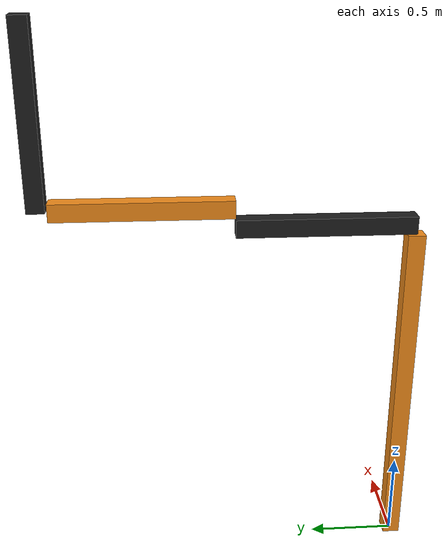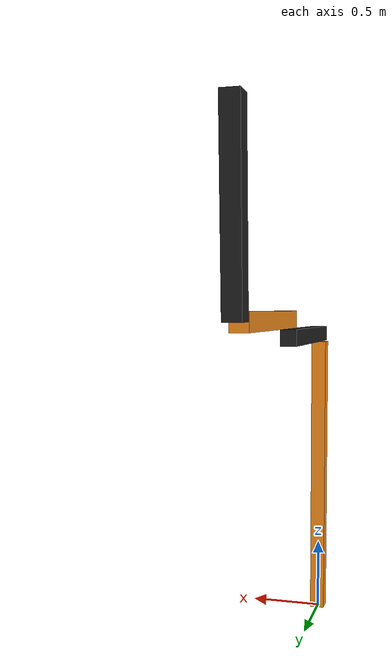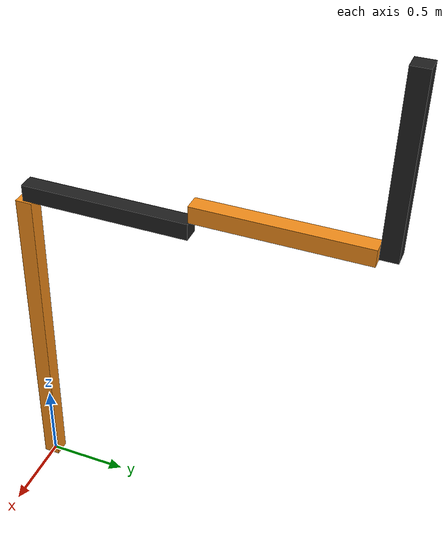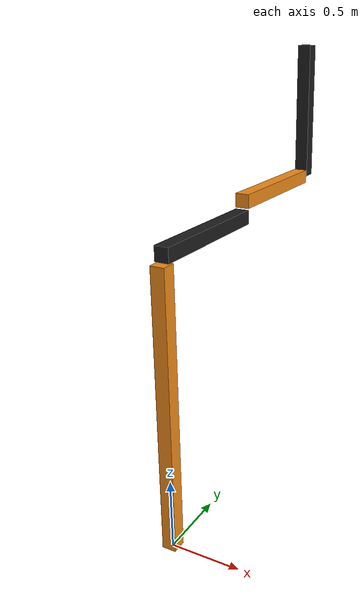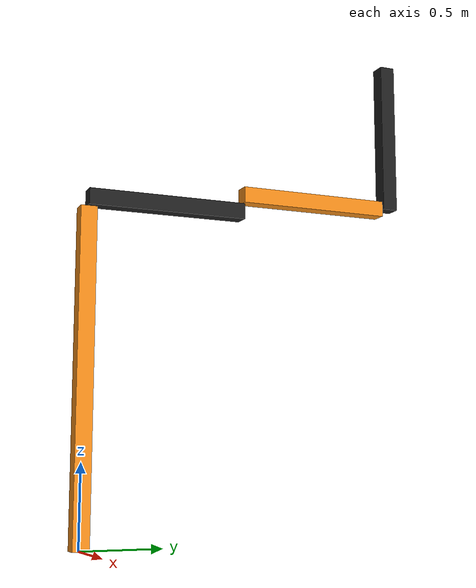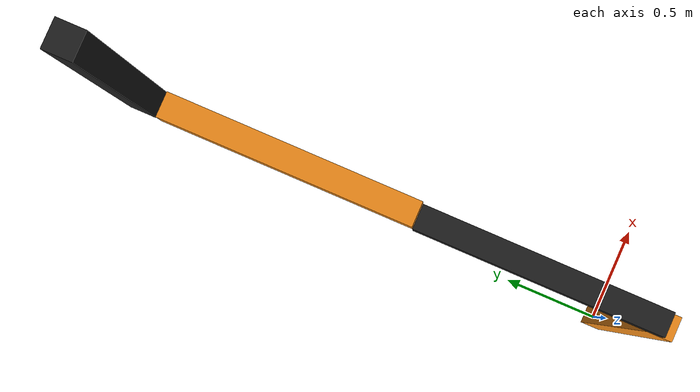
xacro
<?xml version="1.0"?>
<!-- RBE 500 Group Assignment Robot Arm -->
<robot name="arm" xmlns:xacro="http://www.ros.org/wiki/xacro">

  <!-- Constants for robot dimensions. NOTE: Mass and intertia are NOT correct currently, but don't matter for this assignment. -->
  <xacro:property name="PI" value="3.14159"/>
  <xacro:property name="mass" value="1" /> <!-- arbitrary value for mass. not accurate currently -->
  <xacro:property name="width" value="0.1" /> <!-- Square dimensions (widthxwidth) of links -->
  <xacro:property name="length1" value="2" /> <!-- Link 1 -->
  <xacro:property name="length2" value="1" /> <!-- Link 2 -->
  <xacro:property name="length3" value="1" /> <!-- Link 3 -->
  <xacro:property name="length4" value="1" /> <!-- Link 4 -->
  <xacro:property name="joint_offset" value="0.01" /> <!-- Space gap from link and joint -->

  <!-- Import all Gazebo-customization elements, including Gazebo colors -->
  <xacro:include filename="$(find part1_gazebo)/urdf/arm.gazebo" />
  <!-- Import Rviz colors -->
  <xacro:include filename="$(find part1_gazebo)/urdf/materials.xacro" />

  <!-- Used for fixing robot to Gazebo 'base_link' -->
  <link name="world"/>

  <joint name="fixed" type="fixed">
    <parent link="world"/>
    <child link="link1"/>
  </joint>

  <!-- Base Link -->
  <link name="link1">
    <collision>
      <origin xyz="0 0 ${length1/2}" rpy="0 0 0"/>
      <geometry>
	<box size="${width} ${width} ${length1}"/>
      </geometry>
    </collision>

    <visual>
      <origin xyz="0 0 ${length1/2}" rpy="0 0 0"/>
      <geometry>
	<box size="${width} ${width} ${length1}"/>
      </geometry>
      <material name="orange"/>
    </visual>

    <inertial>
      <origin xyz="0 0 ${length1/2}" rpy="0 0 0"/>
      <mass value="${mass}"/>
      <inertia
	  ixx="${mass / 12.0 * (width*width + length1*length1)}" ixy="0.0" ixz="0.0"
	  iyy="${mass / 12.0 * (length1*length1 + width*width)}" iyz="0.0"
	  izz="${mass / 12.0 * (width*width + width*width)}"/>
    </inertial>
  </link>

  <joint name="joint1" type="revolute">
    <parent link="link1"/>
    <child link="link2"/>
    <origin xyz="0 0 ${length1 + joint_offset + width/2}" rpy="0 0 0"/>
    <limit effort="1000.0" lower="0.0" upper="0.548" velocity="0.5"/>
    <dynamics damping="0.7"/>
    <axis xyz="0 0 1"/>
  </joint>

  <!-- Middle Link -->
  <link name="link2">
    <collision>
	<origin xyz="0 ${length2/2} 0" rpy="0 0 0"/>
      <geometry>
	<box size="${width} ${length2} ${width}"/>
      </geometry>
    </collision>

    <visual>
      <origin xyz="0 ${length2/2} 0" rpy="0 0 0"/>
      <geometry>
	<box size="${width} ${length2} ${width}"/>
      </geometry>
      <material name="black"/>
    </visual>

    <inertial>
      <origin xyz="0 ${length2/2} 0" rpy="0 0 0"/>
      <mass value="${mass}"/>
      <inertia
	  ixx="${mass / 12.0 * (width*width + length2*length2)}" ixy="0.0" ixz="0.0"
	  iyy="${mass / 12.0 * (length2*length2 + width*width)}" iyz="0.0"
	  izz="${mass / 12.0 * (width*width + width*width)}"/>
    </inertial>
  </link>

  <joint name="joint2" type="revolute">
    <parent link="link2"/>
    <child link="link3"/>
    <origin xyz="0 ${length2} ${joint_offset + width}" rpy="0 0 0"/>
    <axis xyz="0 0 1"/>
    <limit effort="1000.0" lower="0.0" upper="0.548" velocity="0.5"/>
    <dynamics damping="0.7"/>
  </joint>

  <!-- Top Link -->
  <link name="link3">
    <collision>
      <origin xyz="0 ${length3/2} 0" rpy="0 0 0"/>
      <geometry>
	<box size="${width} ${length3} ${width}"/>
      </geometry>
    </collision>

    <visual>
      <origin xyz="0 ${length3/2} 0" rpy="0 0 0"/>
      <geometry>
	<box size="${width} ${length3} ${width}"/>
      </geometry>
      <material name="orange"/>
    </visual>

    <inertial>
      <origin xyz="0 ${length3/2} 0" rpy="0 0 0"/>
      <mass value="${mass}"/>
      <inertia
	  ixx="${mass / 12.0 * (width*width + length3*length3)}" ixy="0.0" ixz="0.0"
	  iyy="${mass / 12.0 * (length3*length3 + width*width)}" iyz="0.0"
	  izz="${mass / 12.0 * (width*width + width*width)}"/>
    </inertial>
  </link>

  <joint name="joint3" type="prismatic">
    <parent link="link3"/>
    <child link="link4"/>
    <origin xyz="0 ${length3 + width/2 + joint_offset} 0" rpy="0 0 0"/>
    <axis xyz="0 0 1"/>
    <limit effort="1000.0" lower="-1.0" upper="0.0" velocity="1.0"/>
    <dynamics damping="0.7"/>
  </joint>

  <link name="link4">
    <collision>
      <origin xyz="0 0 ${length4/2}" rpy="0 0 0"/>
      <geometry>
	<box size="${width} ${width} ${length4}"/>
      </geometry>
    </collision>

    <visual>
      <origin xyz="0 0 ${length4/2}" rpy="0 0 0"/>
      <geometry>
	<box size="${width} ${width} ${length4}"/>
      </geometry>
      <material name="black"/>
    </visual>

    <inertial>
      <origin xyz="0 0 ${length4/2}" rpy="0 0 0"/>
      <mass value="${mass}"/>
      <inertia
	  ixx="${mass / 12.0 * (width*width + length4*length4)}" ixy="0.0" ixz="0.0"
	  iyy="${mass / 12.0 * (length4*length4 + width*width)}" iyz="0.0"
	  izz="${mass / 12.0 * (width*width + width*width)}"/>
    </inertial>
  </link>

  <transmission name="tran1">
    <type>transmission_interface/SimpleTransmission</type>
    <joint name="joint1">
      <hardwareInterface>EffortJointInterface</hardwareInterface>
    </joint>
    <actuator name="motor1">
      <hardwareInterface>EffortJointInterface</hardwareInterface>
      <mechanicalReduction>1</mechanicalReduction>
    </actuator>
  </transmission>

  <transmission name="tran2">
    <type>transmission_interface/SimpleTransmission</type>
    <joint name="joint2">
      <hardwareInterface>EffortJointInterface</hardwareInterface>
    </joint>
    <actuator name="motor2">
      <hardwareInterface>EffortJointInterface</hardwareInterface>
      <mechanicalReduction>1</mechanicalReduction>
    </actuator>
  </transmission>

    <transmission name="tran3">
    <type>transmission_interface/SimpleTransmission</type>
    <joint name="joint3">
      <hardwareInterface>EffortJointInterface</hardwareInterface>
    </joint>
    <actuator name="motor3">
      <hardwareInterface>EffortJointInterface</hardwareInterface>
      <mechanicalReduction>1</mechanicalReduction>
    </actuator>
  </transmission>

</robot>
